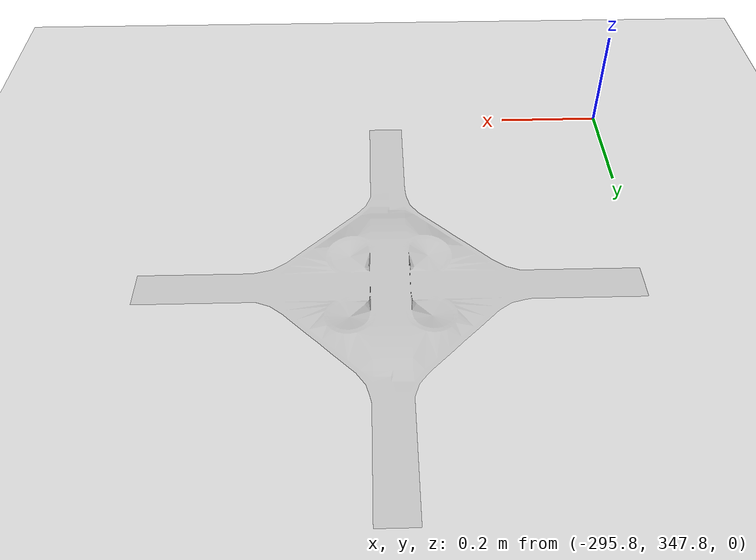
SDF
<sdf version="1.6">
 <world name="default">
  <model name="cloverleaf_interchange">
   <static>1</static>
   <link name="link">
    <collision name="collision">
     <geometry>
      <mesh>
       <uri>model://cloverleaf_interchange/meshes/cloverleaf.obj</uri>
       <scale>0.0254 0.0254 0.0254</scale>
      </mesh>
     </geometry>
    </collision>
    <visual name="visual">
     <geometry>
      <mesh>
       <uri>model://cloverleaf_interchange/meshes/cloverleaf.obj</uri>
       <scale>0.0254 0.0254 0.0254</scale>
      </mesh>
     </geometry>
    </visual>
   </link>
   <pose>-295.324 348.572 0 0 -0 0</pose>
  </model>
  <model name="ground_plane">
   <static>1</static>
   <link name="link">
    <collision name="collision">
     <geometry><plane><normal>0 0 1</normal><size>100 100</size></plane></geometry>
     <surface>
      <contact><collide_bitmask>65535</collide_bitmask></contact>
      <friction><ode><mu>100</mu><mu2>50</mu2></ode></friction>
     </surface>
    </collision>
    <visual name="visual">
     <cast_shadows>0</cast_shadows>
     <geometry><plane><normal>0 0 1</normal><size>100 100</size></plane></geometry>
     <material>
      <script><uri>file://media/materials/scripts/gazebo.material</uri><name>Gazebo/Grey</name></script>
     </material>
    </visual>
   </link>
   <pose>-12.5153 -61.1689 0 0 -0 0</pose>
  </model>
 </world>
</sdf>
